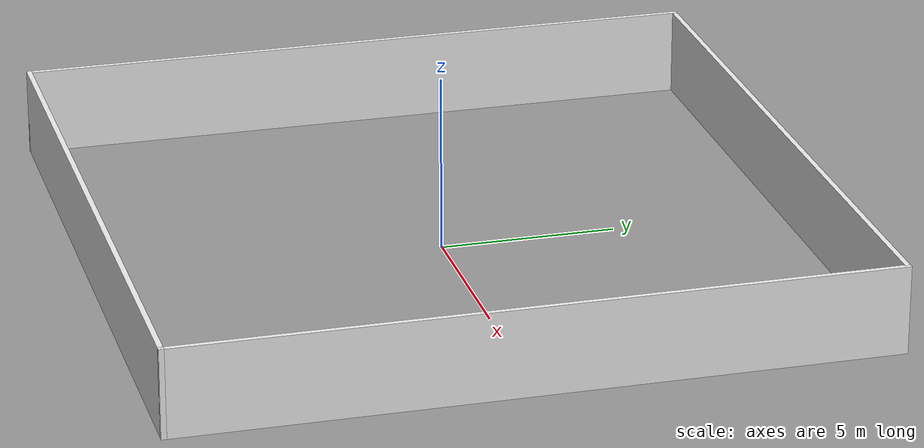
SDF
<?xml version='1.0'?>
<sdf version='1.6'>
  <model name='4_walls'>
    <pose frame=''>-0.05191 0.062908 0 0 -0 0</pose>
    <link name='Wall_0'>
      <collision name='Wall_0_Collision'>
        <geometry>
          <box>
            <size>20 0.15 2.5</size>
          </box>
        </geometry>
        <pose frame=''>0 0 1.25 0 -0 0</pose>
      </collision>
      <visual name='Wall_0_Visual'>
        <pose frame=''>0 0 1.25 0 -0 0</pose>
        <geometry>
          <box>
            <size>20 0.15 2.5</size>
          </box>
        </geometry>
        <material>
          <script>
            <uri>file://media/materials/scripts/gazebo.material</uri>
            <name>Gazebo/White</name>
          </script>
          <ambient>1 1 1 1</ambient>
        </material>
      </visual>
      <pose frame=''>-9.925 0 0 0 0 -1.5708</pose>
    </link>
    <link name='Wall_2'>
      <collision name='Wall_2_Collision'>
        <geometry>
          <box>
            <size>20 0.15 2.5</size>
          </box>
        </geometry>
        <pose frame=''>0 0 1.25 0 -0 0</pose>
      </collision>
      <visual name='Wall_2_Visual'>
        <pose frame=''>0 0 1.25 0 -0 0</pose>
        <geometry>
          <box>
            <size>20 0.15 2.5</size>
          </box>
        </geometry>
        <material>
          <script>
            <uri>file://media/materials/scripts/gazebo.material</uri>
            <name>Gazebo/White</name>
          </script>
          <ambient>1 1 1 1</ambient>
        </material>
      </visual>
      <pose frame=''>0 9.925 0 0 -0 3.14159</pose>
    </link>
    <link name='Wall_4'>
      <collision name='Wall_4_Collision'>
        <geometry>
          <box>
            <size>20 0.15 2.5</size>
          </box>
        </geometry>
        <pose frame=''>0 0 1.25 0 -0 0</pose>
      </collision>
      <visual name='Wall_4_Visual'>
        <pose frame=''>0 0 1.25 0 -0 0</pose>
        <geometry>
          <box>
            <size>20 0.15 2.5</size>
          </box>
        </geometry>
        <material>
          <script>
            <uri>file://media/materials/scripts/gazebo.material</uri>
            <name>Gazebo/White</name>
          </script>
          <ambient>1 1 1 1</ambient>
        </material>
      </visual>
      <pose frame=''>9.925 0 0 0 0 -1.5708</pose>
    </link>
    <link name='Wall_6'>
      <collision name='Wall_6_Collision'>
        <geometry>
          <box>
            <size>20 0.15 2.5</size>
          </box>
        </geometry>
        <pose frame=''>0 0 1.25 0 -0 0</pose>
      </collision>
      <visual name='Wall_6_Visual'>
        <pose frame=''>0 0 1.25 0 -0 0</pose>
        <geometry>
          <box>
            <size>20 0.15 2.5</size>
          </box>
        </geometry>
        <material>
          <script>
            <uri>file://media/materials/scripts/gazebo.material</uri>
            <name>Gazebo/Whites</name>
          </script>
          <ambient>1 1 1 1</ambient>
        </material>
      </visual>
      <pose frame=''>0 -9.925 0 0 -0 0</pose>
    </link>
    <static>1</static>
  </model>
</sdf>
